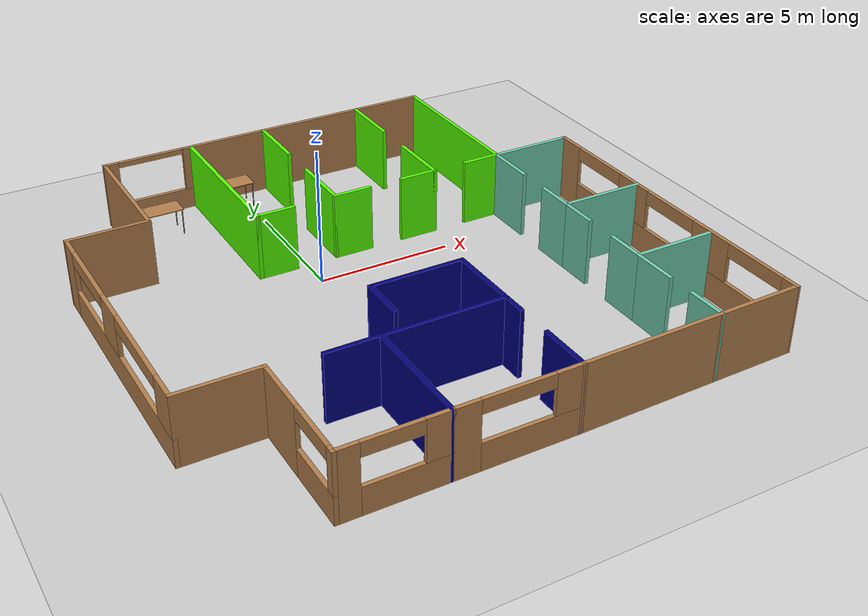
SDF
<sdf version="1.6">
 <world name="default">
  <model name="ground_plane">
   <static>1</static>
   <link name="link">
    <collision name="collision">
     <geometry><plane><normal>0 0 1</normal><size>100 100</size></plane></geometry>
     <surface><friction><ode><mu>100</mu><mu2>50</mu2></ode></friction></surface>
    </collision>
    <visual name="visual">
     <cast_shadows>0</cast_shadows>
     <geometry><plane><normal>0 0 1</normal><size>100 100</size></plane></geometry>
     <material>
      <script><uri>file://media/materials/scripts/gazebo.material</uri><name>Gazebo/Grey</name></script>
     </material>
    </visual>
   </link>
  </model>
  <model name="Office_Building">
   <pose>1.54423 -1.89975 0 0 -0 0</pose>
   <link name="Wall_1">
    <pose>-4.9967 9.51095 0 0 -0 0</pose>
    <visual name="Wall_1_Visual_0">
     <pose>-1.46283 0 1.25 0 -0 0</pose>
     <geometry><box><size>0.574332 0.15 2.5</size></box></geometry>
     <material>
      <script><uri>file://media/materials/scripts/gazebo.material</uri><name>Gazebo/Wood</name></script>
      <ambient>1 1 1 1</ambient>
     </material>
     <meta><layer>0</layer></meta>
    </visual>
    <collision name="Wall_1_Collision_0">
     <geometry><box><size>0.574332 0.15 2.5</size></box></geometry>
     <pose>-1.46283 0 1.25 0 -0 0</pose>
    </collision>
    <visual name="Wall_1_Visual_1">
     <pose>0.287166 0 0.4 0 -0 0</pose>
     <geometry><box><size>2.92567 0.15 0.8</size></box></geometry>
     <material>
      <script><uri>file://media/materials/scripts/gazebo.material</uri><name>Gazebo/Wood</name></script>
      <ambient>1 1 1 1</ambient>
     </material>
     <meta><layer>0</layer></meta>
    </visual>
    <collision name="Wall_1_Collision_1">
     <geometry><box><size>2.92567 0.15 0.8</size></box></geometry>
     <pose>0.287166 0 0.4 0 -0 0</pose>
    </collision>
    <visual name="Wall_1_Visual_2">
     <pose>1.53717 0 1.65 0 -0 0</pose>
     <geometry><box><size>0.425668 0.15 1.7</size></box></geometry>
     <material>
      <script><uri>file://media/materials/scripts/gazebo.material</uri><name>Gazebo/Wood</name></script>
      <ambient>1 1 1 1</ambient>
     </material>
     <meta><layer>0</layer></meta>
    </visual>
    <collision name="Wall_1_Collision_2">
     <geometry><box><size>0.425668 0.15 1.7</size></box></geometry>
     <pose>1.53717 0 1.65 0 -0 0</pose>
    </collision>
    <visual name="Wall_1_Visual_3">
     <pose>0.074332 0 2.4 0 -0 0</pose>
     <geometry><box><size>2.5 0.15 0.2</size></box></geometry>
     <material>
      <script><uri>file://media/materials/scripts/gazebo.material</uri><name>Gazebo/Wood</name></script>
      <ambient>1 1 1 1</ambient>
     </material>
     <meta><layer>0</layer></meta>
    </visual>
    <collision name="Wall_1_Collision_3">
     <geometry><box><size>2.5 0.15 0.2</size></box></geometry>
     <pose>0.074332 0 2.4 0 -0 0</pose>
    </collision>
   </link>
   <link name="Wall_12">
    <collision name="Wall_12_Collision">
     <geometry><box><size>1.5 0.15 2.5</size></box></geometry>
     <pose>0 0 1.25 0 -0 0</pose>
    </collision>
    <visual name="Wall_12_Visual">
     <pose>0 0 1.25 0 -0 0</pose>
     <geometry><box><size>1.5 0.15 2.5</size></box></geometry>
     <material>
      <script><uri>file://media/materials/scripts/gazebo.material</uri><name>Gazebo/Grey</name></script>
      <ambient>0.333333 1 0 1</ambient>
     </material>
     <meta><layer>0</layer></meta>
    </visual>
    <pose>0.345497 3.18997 0 0 -0 0</pose>
   </link>
   <link name="Wall_16">
    <collision name="Wall_16_Collision">
     <geometry><box><size>1.5 0.15 2.5</size></box></geometry>
     <pose>0 0 1.25 0 -0 0</pose>
    </collision>
    <visual name="Wall_16_Visual">
     <pose>0 0 1.25 0 -0 0</pose>
     <geometry><box><size>1.5 0.15 2.5</size></box></geometry>
     <material>
      <script><uri>file://media/materials/scripts/gazebo.material</uri><name>Gazebo/Grey</name></script>
      <ambient>0.333333 1 0 1</ambient>
     </material>
     <meta><layer>0</layer></meta>
    </visual>
    <pose>3.0455 3.18997 0 0 -0 0</pose>
   </link>
   <link name="Wall_18">
    <collision name="Wall_18_Collision">
     <geometry><box><size>1.5 0.15 2.5</size></box></geometry>
     <pose>0 0 1.25 0 -0 0</pose>
    </collision>
    <visual name="Wall_18_Visual">
     <pose>0 0 1.25 0 -0 0</pose>
     <geometry><box><size>1.5 0.15 2.5</size></box></geometry>
     <material>
      <script><uri>file://media/materials/scripts/gazebo.material</uri><name>Gazebo/Grey</name></script>
      <ambient>0.333333 1 0 1</ambient>
     </material>
     <meta><layer>0</layer></meta>
    </visual>
    <pose>5.7455 3.18997 0 0 -0 0</pose>
   </link>
   <link name="Wall_2">
    <collision name="Wall_2_Collision">
     <geometry><box><size>6.5 0.15 2.5</size></box></geometry>
     <pose>0 0 1.25 0 -0 0</pose>
    </collision>
    <visual name="Wall_2_Visual">
     <pose>0 0 1.25 0 -0 0</pose>
     <geometry><box><size>6.5 0.15 2.5</size></box></geometry>
     <material>
      <script><uri>file://media/materials/scripts/gazebo.material</uri><name>Gazebo/Grey</name></script>
      <ambient>0.333333 1 0 1</ambient>
     </material>
     <meta><layer>0</layer></meta>
    </visual>
    <pose>-3.3217 6.33595 0 0 0 -1.5708</pose>
   </link>
   <link name="Wall_22">
    <collision name="Wall_22_Collision">
     <geometry><box><size>6.5 0.15 2.5</size></box></geometry>
     <pose>0 0 1.25 0 -0 0</pose>
    </collision>
    <visual name="Wall_22_Visual">
     <pose>0 0 1.25 0 -0 0</pose>
     <geometry><box><size>6.5 0.15 2.5</size></box></geometry>
     <material>
      <script><uri>file://media/materials/scripts/gazebo.material</uri><name>Gazebo/Grey</name></script>
      <ambient>0.333333 1 0 1</ambient>
     </material>
     <meta><layer>0</layer></meta>
    </visual>
    <pose>6.4205 6.36497 0 0 -0 1.5708</pose>
   </link>
   <link name="Wall_23">
    <collision name="Wall_23_Collision">
     <geometry><box><size>9.89224 0.15 2.5</size></box></geometry>
     <pose>0 0 1.25 0 -0 0</pose>
    </collision>
    <visual name="Wall_23_Visual">
     <pose>0 0 1.25 0 -0 0</pose>
     <geometry><box><size>9.89224 0.15 2.5</size></box></geometry>
     <material>
      <script><uri>file://media/materials/scripts/gazebo.material</uri><name>Gazebo/Wood</name></script>
      <ambient>1 1 1 1</ambient>
     </material>
     <meta><layer>0</layer></meta>
    </visual>
    <pose>1.5494 9.52546 0 0 0 -3.13861</pose>
   </link>
   <link name="Wall_25">
    <collision name="Wall_25_Collision">
     <geometry><box><size>2.5 0.15 2.5</size></box></geometry>
     <pose>0 0 1.25 0 -0 0</pose>
    </collision>
    <visual name="Wall_25_Visual">
     <pose>0 0 1.25 0 -0 0</pose>
     <geometry><box><size>2.5 0.15 2.5</size></box></geometry>
     <material>
      <script><uri>file://media/materials/scripts/gazebo.material</uri><name>Gazebo/Grey</name></script>
      <ambient>0.333333 1 0 1</ambient>
     </material>
     <meta><layer>0</layer></meta>
    </visual>
    <pose>-0.329504 4.36497 0 0 -0 1.5708</pose>
   </link>
   <link name="Wall_3">
    <collision name="Wall_3_Collision">
     <geometry><box><size>1.5 0.15 2.5</size></box></geometry>
     <pose>0 0 1.25 0 -0 0</pose>
    </collision>
    <visual name="Wall_3_Visual">
     <pose>0 0 1.25 0 -0 0</pose>
     <geometry><box><size>1.5 0.15 2.5</size></box></geometry>
     <material>
      <script><uri>file://media/materials/scripts/gazebo.material</uri><name>Gazebo/Grey</name></script>
      <ambient>0.333333 1 0 1</ambient>
     </material>
     <meta><layer>0</layer></meta>
    </visual>
    <pose>-2.6467 3.16095 0 0 -0 0</pose>
   </link>
   <link name="Wall_30">
    <collision name="Wall_30_Collision">
     <geometry><box><size>2.5 0.15 2.5</size></box></geometry>
     <pose>0 0 1.25 0 -0 0</pose>
    </collision>
    <visual name="Wall_30_Visual">
     <pose>0 0 1.25 0 -0 0</pose>
     <geometry><box><size>2.5 0.15 2.5</size></box></geometry>
     <material>
      <script><uri>file://media/materials/scripts/gazebo.material</uri><name>Gazebo/Grey</name></script>
      <ambient>0.333333 1 0 1</ambient>
     </material>
     <meta><layer>0</layer></meta>
    </visual>
    <pose>-0.329504 8.31497 0 0 -0 1.5708</pose>
   </link>
   <link name="Wall_32">
    <collision name="Wall_32_Collision">
     <geometry><box><size>2.5 0.15 2.5</size></box></geometry>
     <pose>0 0 1.25 0 -0 0</pose>
    </collision>
    <visual name="Wall_32_Visual">
     <pose>0 0 1.25 0 -0 0</pose>
     <geometry><box><size>2.5 0.15 2.5</size></box></geometry>
     <material>
      <script><uri>file://media/materials/scripts/gazebo.material</uri><name>Gazebo/Grey</name></script>
      <ambient>0.333333 1 0 1</ambient>
     </material>
     <meta><layer>0</layer></meta>
    </visual>
    <pose>3.7205 4.36497 0 0 -0 1.5708</pose>
   </link>
   <link name="Wall_36">
    <collision name="Wall_36_Collision">
     <geometry><box><size>2.5 0.15 2.5</size></box></geometry>
     <pose>0 0 1.25 0 -0 0</pose>
    </collision>
    <visual name="Wall_36_Visual">
     <pose>0 0 1.25 0 -0 0</pose>
     <geometry><box><size>2.5 0.15 2.5</size></box></geometry>
     <material>
      <script><uri>file://media/materials/scripts/gazebo.material</uri><name>Gazebo/Grey</name></script>
      <ambient>0.333333 1 0 1</ambient>
     </material>
     <meta><layer>0</layer></meta>
    </visual>
    <pose>3.7205 8.31497 0 0 -0 1.5708</pose>
   </link>
   <link name="Wall_45">
    <pose>-9.5217 -0.264053 0 0 0 -1.5708</pose>
    <visual name="Wall_45_Visual_0">
     <pose>-4.52501 0 1.25 0 -0 0</pose>
     <geometry><box><size>0.949979 0.15 2.5</size></box></geometry>
     <material>
      <script><uri>file://media/materials/scripts/gazebo.material</uri><name>Gazebo/Wood</name></script>
      <ambient>1 1 1 1</ambient>
     </material>
     <meta><layer>0</layer></meta>
    </visual>
    <collision name="Wall_45_Collision_0">
     <geometry><box><size>0.949979 0.15 2.5</size></box></geometry>
     <pose>-4.52501 0 1.25 0 -0 0</pose>
    </collision>
    <visual name="Wall_45_Visual_1">
     <pose>0.47499 0 0.5 0 -0 0</pose>
     <geometry><box><size>9.05002 0.15 1</size></box></geometry>
     <material>
      <script><uri>file://media/materials/scripts/gazebo.material</uri><name>Gazebo/Wood</name></script>
      <ambient>1 1 1 1</ambient>
     </material>
     <meta><layer>0</layer></meta>
    </visual>
    <collision name="Wall_45_Collision_1">
     <geometry><box><size>9.05002 0.15 1</size></box></geometry>
     <pose>0.47499 0 0.5 0 -0 0</pose>
    </collision>
    <visual name="Wall_45_Visual_2">
     <pose>-0.367725 0 1.75 0 -0 0</pose>
     <geometry><box><size>1.36459 0.15 1.5</size></box></geometry>
     <material>
      <script><uri>file://media/materials/scripts/gazebo.material</uri><name>Gazebo/Wood</name></script>
      <ambient>1 1 1 1</ambient>
     </material>
     <meta><layer>0</layer></meta>
    </visual>
    <collision name="Wall_45_Collision_2">
     <geometry><box><size>1.36459 0.15 1.5</size></box></geometry>
     <pose>-0.367725 0 1.75 0 -0 0</pose>
    </collision>
    <visual name="Wall_45_Visual_3">
     <pose>4.40728 0 1.75 0 -0 0</pose>
     <geometry><box><size>1.18543 0.15 1.5</size></box></geometry>
     <material>
      <script><uri>file://media/materials/scripts/gazebo.material</uri><name>Gazebo/Wood</name></script>
      <ambient>1 1 1 1</ambient>
     </material>
     <meta><layer>0</layer></meta>
    </visual>
    <collision name="Wall_45_Collision_3">
     <geometry><box><size>1.18543 0.15 1.5</size></box></geometry>
     <pose>4.40728 0 1.75 0 -0 0</pose>
    </collision>
    <visual name="Wall_45_Visual_4">
     <pose>-2.55002 0 2.25 0 -0 0</pose>
     <geometry><box><size>3 0.15 0.5</size></box></geometry>
     <material>
      <script><uri>file://media/materials/scripts/gazebo.material</uri><name>Gazebo/Wood</name></script>
      <ambient>1 1 1 1</ambient>
     </material>
     <meta><layer>0</layer></meta>
    </visual>
    <collision name="Wall_45_Collision_4">
     <geometry><box><size>3 0.15 0.5</size></box></geometry>
     <pose>-2.55002 0 2.25 0 -0 0</pose>
    </collision>
    <visual name="Wall_45_Visual_5">
     <pose>2.06457 0 2.25 0 -0 0</pose>
     <geometry><box><size>3.5 0.15 0.5</size></box></geometry>
     <material>
      <script><uri>file://media/materials/scripts/gazebo.material</uri><name>Gazebo/Wood</name></script>
      <ambient>1 1 1 1</ambient>
     </material>
     <meta><layer>0</layer></meta>
    </visual>
    <collision name="Wall_45_Collision_5">
     <geometry><box><size>3.5 0.15 0.5</size></box></geometry>
     <pose>2.06457 0 2.25 0 -0 0</pose>
    </collision>
   </link>
   <link name="Wall_46">
    <collision name="Wall_46_Collision">
     <geometry><box><size>3 0.15 2.5</size></box></geometry>
     <pose>0 0 1.25 0 -0 0</pose>
    </collision>
    <visual name="Wall_46_Visual">
     <pose>0 0 1.25 0 -0 0</pose>
     <geometry><box><size>3 0.15 2.5</size></box></geometry>
     <material>
      <script><uri>file://media/materials/scripts/gazebo.material</uri><name>Gazebo/Wood</name></script>
      <ambient>1 1 1 1</ambient>
     </material>
     <meta><layer>0</layer></meta>
    </visual>
    <pose>-8.0967 -5.18905 0 0 -0 0</pose>
   </link>
   <link name="Wall_48">
    <pose>-6.6717 -7.36405 0 0 0 -1.5708</pose>
    <visual name="Wall_48_Visual_0">
     <pose>-1.15861 0 1.25 0 -0 0</pose>
     <geometry><box><size>2.18277 0.15 2.5</size></box></geometry>
     <material>
      <script><uri>file://media/materials/scripts/gazebo.material</uri><name>Gazebo/Wood</name></script>
      <ambient>0 0 0.498039 1</ambient>
     </material>
     <meta><layer>0</layer></meta>
    </visual>
    <collision name="Wall_48_Collision_0">
     <geometry><box><size>2.18277 0.15 2.5</size></box></geometry>
     <pose>-1.15861 0 1.25 0 -0 0</pose>
    </collision>
    <visual name="Wall_48_Visual_1">
     <pose>1.09139 0 0.5 0 -0 0</pose>
     <geometry><box><size>2.31723 0.15 1</size></box></geometry>
     <material>
      <script><uri>file://media/materials/scripts/gazebo.material</uri><name>Gazebo/Wood</name></script>
      <ambient>0 0 0.498039 1</ambient>
     </material>
     <meta><layer>0</layer></meta>
    </visual>
    <collision name="Wall_48_Collision_1">
     <geometry><box><size>2.31723 0.15 1</size></box></geometry>
     <pose>1.09139 0 0.5 0 -0 0</pose>
    </collision>
    <visual name="Wall_48_Visual_2">
     <pose>2.09139 0 1.75 0 -0 0</pose>
     <geometry><box><size>0.317226 0.15 1.5</size></box></geometry>
     <material>
      <script><uri>file://media/materials/scripts/gazebo.material</uri><name>Gazebo/Wood</name></script>
      <ambient>0 0 0.498039 1</ambient>
     </material>
     <meta><layer>0</layer></meta>
    </visual>
    <collision name="Wall_48_Collision_2">
     <geometry><box><size>0.317226 0.15 1.5</size></box></geometry>
     <pose>2.09139 0 1.75 0 -0 0</pose>
    </collision>
    <visual name="Wall_48_Visual_3">
     <pose>0.932774 0 2.25 0 -0 0</pose>
     <geometry><box><size>2 0.15 0.5</size></box></geometry>
     <material>
      <script><uri>file://media/materials/scripts/gazebo.material</uri><name>Gazebo/Wood</name></script>
      <ambient>0 0 0.498039 1</ambient>
     </material>
     <meta><layer>0</layer></meta>
    </visual>
    <collision name="Wall_48_Collision_3">
     <geometry><box><size>2 0.15 0.5</size></box></geometry>
     <pose>0.932774 0 2.25 0 -0 0</pose>
    </collision>
   </link>
   <link name="Wall_49">
    <pose>-4.8717 -9.53905 0 0 -0 0</pose>
    <visual name="Wall_49_Visual_0">
     <pose>-1.4581 0 1.25 0 -0 0</pose>
     <geometry><box><size>0.833803 0.15 2.5</size></box></geometry>
     <material>
      <script><uri>file://media/materials/scripts/gazebo.material</uri><name>Gazebo/Wood</name></script>
      <ambient>0 0 0.498039 1</ambient>
     </material>
     <meta><layer>0</layer></meta>
    </visual>
    <collision name="Wall_49_Collision_0">
     <geometry><box><size>0.833803 0.15 2.5</size></box></geometry>
     <pose>-1.4581 0 1.25 0 -0 0</pose>
    </collision>
    <visual name="Wall_49_Visual_1">
     <pose>0.416901 0 0.5 0 -0 0</pose>
     <geometry><box><size>2.9162 0.15 1</size></box></geometry>
     <material>
      <script><uri>file://media/materials/scripts/gazebo.material</uri><name>Gazebo/Wood</name></script>
      <ambient>0 0 0.498039 1</ambient>
     </material>
     <meta><layer>0</layer></meta>
    </visual>
    <collision name="Wall_49_Collision_1">
     <geometry><box><size>2.9162 0.15 1</size></box></geometry>
     <pose>0.416901 0 0.5 0 -0 0</pose>
    </collision>
    <visual name="Wall_49_Visual_2">
     <pose>1.4169 0 1.75 0 -0 0</pose>
     <geometry><box><size>0.916197 0.15 1.5</size></box></geometry>
     <material>
      <script><uri>file://media/materials/scripts/gazebo.material</uri><name>Gazebo/Wood</name></script>
      <ambient>0 0 0.498039 1</ambient>
     </material>
     <meta><layer>0</layer></meta>
    </visual>
    <collision name="Wall_49_Collision_2">
     <geometry><box><size>0.916197 0.15 1.5</size></box></geometry>
     <pose>1.4169 0 1.75 0 -0 0</pose>
    </collision>
    <visual name="Wall_49_Visual_3">
     <pose>-0.041197 0 2.25 0 -0 0</pose>
     <geometry><box><size>2 0.15 0.5</size></box></geometry>
     <material>
      <script><uri>file://media/materials/scripts/gazebo.material</uri><name>Gazebo/Wood</name></script>
      <ambient>0 0 0.498039 1</ambient>
     </material>
     <meta><layer>0</layer></meta>
    </visual>
    <collision name="Wall_49_Collision_3">
     <geometry><box><size>2 0.15 0.5</size></box></geometry>
     <pose>-0.041197 0 2.25 0 -0 0</pose>
    </collision>
   </link>
   <link name="Wall_50">
    <collision name="Wall_50_Collision">
     <geometry><box><size>4.25 0.15 2.5</size></box></geometry>
     <pose>0 0 1.25 0 -0 0</pose>
    </collision>
    <visual name="Wall_50_Visual">
     <pose>0 0 1.25 0 -0 0</pose>
     <geometry><box><size>4.25 0.15 2.5</size></box></geometry>
     <material>
      <script><uri>file://media/materials/scripts/gazebo.material</uri><name>Gazebo/Grey</name></script>
      <ambient>0 0 0.498039 1</ambient>
     </material>
     <meta><layer>0</layer></meta>
    </visual>
    <pose>-3.0717 -7.48905 0 0 -0 1.5708</pose>
   </link>
   <link name="Wall_51">
    <collision name="Wall_51_Collision">
     <geometry><box><size>4.5 0.15 2.5</size></box></geometry>
     <pose>0 0 1.25 0 -0 0</pose>
    </collision>
    <visual name="Wall_51_Visual">
     <pose>0 0 1.25 0 -0 0</pose>
     <geometry><box><size>4.5 0.15 2.5</size></box></geometry>
     <material>
      <script><uri>file://media/materials/scripts/gazebo.material</uri><name>Gazebo/Grey</name></script>
      <ambient>0 0 0.498039 1</ambient>
     </material>
     <meta><layer>0</layer></meta>
    </visual>
    <pose>-0.896696 -5.43905 0 0 -0 0</pose>
   </link>
   <link name="Wall_52">
    <collision name="Wall_52_Collision">
     <geometry><box><size>2.75 0.15 2.5</size></box></geometry>
     <pose>0 0 1.25 0 -0 0</pose>
    </collision>
    <visual name="Wall_52_Visual">
     <pose>0 0 1.25 0 -0 0</pose>
     <geometry><box><size>2.75 0.15 2.5</size></box></geometry>
     <material>
      <script><uri>file://media/materials/scripts/gazebo.material</uri><name>Gazebo/Grey</name></script>
      <ambient>0 0 0.498039 1</ambient>
     </material>
     <meta><layer>0</layer></meta>
    </visual>
    <pose>1.2783 -4.13905 0 0 -0 1.5708</pose>
   </link>
   <link name="Wall_53">
    <collision name="Wall_53_Collision">
     <geometry><box><size>3.5 0.15 2.5</size></box></geometry>
     <pose>0 0 1.25 0 -0 0</pose>
    </collision>
    <visual name="Wall_53_Visual">
     <pose>0 0 1.25 0 -0 0</pose>
     <geometry><box><size>3.5 0.15 2.5</size></box></geometry>
     <material>
      <script><uri>file://media/materials/scripts/gazebo.material</uri><name>Gazebo/Grey</name></script>
      <ambient>0 0 0.498039 1</ambient>
     </material>
     <meta><layer>0</layer></meta>
    </visual>
    <pose>-0.396696 -2.83905 0 0 -0 3.14159</pose>
   </link>
   <link name="Wall_54">
    <collision name="Wall_54_Collision">
     <geometry><box><size>1.75 0.15 2.5</size></box></geometry>
     <pose>0 0 1.25 0 -0 0</pose>
    </collision>
    <visual name="Wall_54_Visual">
     <pose>0 0 1.25 0 -0 0</pose>
     <geometry><box><size>1.75 0.15 2.5</size></box></geometry>
     <material>
      <script><uri>file://media/materials/scripts/gazebo.material</uri><name>Gazebo/Grey</name></script>
      <ambient>0 0 0.498039 1</ambient>
     </material>
     <meta><layer>0</layer></meta>
    </visual>
    <pose>-2.0717 -3.63905 0 0 0 -1.5708</pose>
   </link>
   <link name="Wall_56">
    <collision name="Wall_56_Collision">
     <geometry><box><size>2 0.15 2.5</size></box></geometry>
     <pose>0 0 1.25 0 -0 0</pose>
    </collision>
    <visual name="Wall_56_Visual">
     <pose>0 0 1.25 0 -0 0</pose>
     <geometry><box><size>2 0.15 2.5</size></box></geometry>
     <material>
      <script><uri>file://media/materials/scripts/gazebo.material</uri><name>Gazebo/Grey</name></script>
      <ambient>0 0 0.498039 1</ambient>
     </material>
     <meta><layer>0</layer></meta>
    </visual>
    <pose>-3.9967 -5.43905 0 0 -0 3.14159</pose>
   </link>
   <link name="Wall_59">
    <pose>-0.896696 -9.53905 0 0 -0 0</pose>
    <visual name="Wall_59_Visual_0">
     <pose>-1.75844 0 1.25 0 -0 0</pose>
     <geometry><box><size>0.983115 0.15 2.5</size></box></geometry>
     <material>
      <script><uri>file://media/materials/scripts/gazebo.material</uri><name>Gazebo/Wood</name></script>
      <ambient>0 0 0.498039 1</ambient>
     </material>
     <meta><layer>0</layer></meta>
    </visual>
    <collision name="Wall_59_Collision_0">
     <geometry><box><size>0.983115 0.15 2.5</size></box></geometry>
     <pose>-1.75844 0 1.25 0 -0 0</pose>
    </collision>
    <visual name="Wall_59_Visual_1">
     <pose>0.491557 0 0.5 0 -0 0</pose>
     <geometry><box><size>3.51688 0.15 1</size></box></geometry>
     <material>
      <script><uri>file://media/materials/scripts/gazebo.material</uri><name>Gazebo/Wood</name></script>
      <ambient>0 0 0.498039 1</ambient>
     </material>
     <meta><layer>0</layer></meta>
    </visual>
    <collision name="Wall_59_Collision_1">
     <geometry><box><size>3.51688 0.15 1</size></box></geometry>
     <pose>0.491557 0 0.5 0 -0 0</pose>
    </collision>
    <visual name="Wall_59_Visual_2">
     <pose>1.74156 0 1.75 0 -0 0</pose>
     <geometry><box><size>1.01689 0.15 1.5</size></box></geometry>
     <material>
      <script><uri>file://media/materials/scripts/gazebo.material</uri><name>Gazebo/Wood</name></script>
      <ambient>0 0 0.498039 1</ambient>
     </material>
     <meta><layer>0</layer></meta>
    </visual>
    <collision name="Wall_59_Collision_2">
     <geometry><box><size>1.01689 0.15 1.5</size></box></geometry>
     <pose>1.74156 0 1.75 0 -0 0</pose>
    </collision>
    <visual name="Wall_59_Visual_3">
     <pose>-0.016885 0 2.25 0 -0 0</pose>
     <geometry><box><size>2.5 0.15 0.5</size></box></geometry>
     <material>
      <script><uri>file://media/materials/scripts/gazebo.material</uri><name>Gazebo/Wood</name></script>
      <ambient>0 0 0.498039 1</ambient>
     </material>
     <meta><layer>0</layer></meta>
    </visual>
    <collision name="Wall_59_Collision_3">
     <geometry><box><size>2.5 0.15 0.5</size></box></geometry>
     <pose>-0.016885 0 2.25 0 -0 0</pose>
    </collision>
   </link>
   <link name="Wall_60">
    <collision name="Wall_60_Collision">
     <geometry><box><size>2 0.15 2.5</size></box></geometry>
     <pose>0 0 1.25 0 -0 0</pose>
    </collision>
    <visual name="Wall_60_Visual">
     <pose>0 0 1.25 0 -0 0</pose>
     <geometry><box><size>2 0.15 2.5</size></box></geometry>
     <material>
      <script><uri>file://media/materials/scripts/gazebo.material</uri><name>Gazebo/Grey</name></script>
      <ambient>0 0 0.498039 1</ambient>
     </material>
     <meta><layer>0</layer></meta>
    </visual>
    <pose>1.2783 -8.61405 0 0 -0 1.5708</pose>
   </link>
   <link name="Wall_63">
    <collision name="Wall_63_Collision">
     <geometry><box><size>1 0.15 2.5</size></box></geometry>
     <pose>0 0 1.25 0 -0 0</pose>
    </collision>
    <visual name="Wall_63_Visual">
     <pose>0 0 1.25 0 -0 0</pose>
     <geometry><box><size>1 0.15 2.5</size></box></geometry>
     <material>
      <script><uri>file://media/materials/scripts/gazebo.material</uri><name>Gazebo/Grey</name></script>
      <ambient>0 0 0.498039 1</ambient>
     </material>
     <meta><layer>0</layer></meta>
    </visual>
    <pose>1.2783 -5.86405 0 0 0 -1.5708</pose>
   </link>
   <link name="Wall_65">
    <collision name="Wall_65_Collision">
     <geometry><box><size>3.25 0.15 2.5</size></box></geometry>
     <pose>0 0 1.25 0 -0 0</pose>
    </collision>
    <visual name="Wall_65_Visual">
     <pose>0 0 1.25 0 -0 0</pose>
     <geometry><box><size>3.25 0.15 2.5</size></box></geometry>
     <material>
      <script><uri>file://media/materials/scripts/gazebo.material</uri><name>Gazebo/Grey</name></script>
      <ambient>0.435294 0.796078 0.67451 1</ambient>
     </material>
     <meta><layer>0</layer></meta>
    </visual>
    <pose>7.9705 3.18997 0 0 -0 0</pose>
   </link>
   <link name="Wall_66">
    <pose>9.5205 -3.11003 0 0 0 -1.5708</pose>
    <visual name="Wall_66_Visual_0">
     <pose>-5.79185 0 1.25 0 -0 0</pose>
     <geometry><box><size>1.1663 0.15 2.5</size></box></geometry>
     <material>
      <script><uri>file://media/materials/scripts/gazebo.material</uri><name>Gazebo/Wood</name></script>
      <ambient>0.435294 0.796078 0.67451 1</ambient>
     </material>
     <meta><layer>0</layer></meta>
    </visual>
    <collision name="Wall_66_Collision_0">
     <geometry><box><size>1.1663 0.15 2.5</size></box></geometry>
     <pose>-5.79185 0 1.25 0 -0 0</pose>
    </collision>
    <visual name="Wall_66_Visual_1">
     <pose>0.583151 0 0.5 0 -0 0</pose>
     <geometry><box><size>11.5837 0.15 1</size></box></geometry>
     <material>
      <script><uri>file://media/materials/scripts/gazebo.material</uri><name>Gazebo/Wood</name></script>
      <ambient>0.435294 0.796078 0.67451 1</ambient>
     </material>
     <meta><layer>0</layer></meta>
    </visual>
    <collision name="Wall_66_Collision_1">
     <geometry><box><size>11.5837 0.15 1</size></box></geometry>
     <pose>0.583151 0 0.5 0 -0 0</pose>
    </collision>
    <visual name="Wall_66_Visual_2">
     <pose>-1.90874 0 1.75 0 -0 0</pose>
     <geometry><box><size>1.59992 0.15 1.5</size></box></geometry>
     <material>
      <script><uri>file://media/materials/scripts/gazebo.material</uri><name>Gazebo/Wood</name></script>
      <ambient>0.435294 0.796078 0.67451 1</ambient>
     </material>
     <meta><layer>0</layer></meta>
    </visual>
    <collision name="Wall_66_Collision_2">
     <geometry><box><size>1.59992 0.15 1.5</size></box></geometry>
     <pose>-1.90874 0 1.75 0 -0 0</pose>
    </collision>
    <visual name="Wall_66_Visual_3">
     <pose>2.29484 0 1.75 0 -0 0</pose>
     <geometry><box><size>1.80724 0.15 1.5</size></box></geometry>
     <material>
      <script><uri>file://media/materials/scripts/gazebo.material</uri><name>Gazebo/Wood</name></script>
      <ambient>0.435294 0.796078 0.67451 1</ambient>
     </material>
     <meta><layer>0</layer></meta>
    </visual>
    <collision name="Wall_66_Collision_3">
     <geometry><box><size>1.80724 0.15 1.5</size></box></geometry>
     <pose>2.29484 0 1.75 0 -0 0</pose>
    </collision>
    <visual name="Wall_66_Visual_4">
     <pose>6.03673 0 1.75 0 -0 0</pose>
     <geometry><box><size>0.676535 0.15 1.5</size></box></geometry>
     <material>
      <script><uri>file://media/materials/scripts/gazebo.material</uri><name>Gazebo/Wood</name></script>
      <ambient>0.435294 0.796078 0.67451 1</ambient>
     </material>
     <meta><layer>0</layer></meta>
    </visual>
    <collision name="Wall_66_Collision_4">
     <geometry><box><size>0.676535 0.15 1.5</size></box></geometry>
     <pose>6.03673 0 1.75 0 -0 0</pose>
    </collision>
    <visual name="Wall_66_Visual_5">
     <pose>-3.9587 0 2.25 0 -0 0</pose>
     <geometry><box><size>2.5 0.15 0.5</size></box></geometry>
     <material>
      <script><uri>file://media/materials/scripts/gazebo.material</uri><name>Gazebo/Wood</name></script>
      <ambient>0.435294 0.796078 0.67451 1</ambient>
     </material>
     <meta><layer>0</layer></meta>
    </visual>
    <collision name="Wall_66_Collision_5">
     <geometry><box><size>2.5 0.15 0.5</size></box></geometry>
     <pose>-3.9587 0 2.25 0 -0 0</pose>
    </collision>
    <visual name="Wall_66_Visual_6">
     <pose>0.141222 0 2.25 0 -0 0</pose>
     <geometry><box><size>2.5 0.15 0.5</size></box></geometry>
     <material>
      <script><uri>file://media/materials/scripts/gazebo.material</uri><name>Gazebo/Wood</name></script>
      <ambient>0.435294 0.796078 0.67451 1</ambient>
     </material>
     <meta><layer>0</layer></meta>
    </visual>
    <collision name="Wall_66_Collision_6">
     <geometry><box><size>2.5 0.15 0.5</size></box></geometry>
     <pose>0.141222 0 2.25 0 -0 0</pose>
    </collision>
    <visual name="Wall_66_Visual_7">
     <pose>4.44846 0 2.25 0 -0 0</pose>
     <geometry><box><size>2.5 0.15 0.5</size></box></geometry>
     <material>
      <script><uri>file://media/materials/scripts/gazebo.material</uri><name>Gazebo/Wood</name></script>
      <ambient>0.435294 0.796078 0.67451 1</ambient>
     </material>
     <meta><layer>0</layer></meta>
    </visual>
    <collision name="Wall_66_Collision_7">
     <geometry><box><size>2.5 0.15 0.5</size></box></geometry>
     <pose>4.44846 0 2.25 0 -0 0</pose>
    </collision>
   </link>
   <link name="Wall_69">
    <collision name="Wall_69_Collision">
     <geometry><box><size>2 0.15 2.5</size></box></geometry>
     <pose>0 0 1.25 0 -0 0</pose>
    </collision>
    <visual name="Wall_69_Visual">
     <pose>0 0 1.25 0 -0 0</pose>
     <geometry><box><size>2 0.15 2.5</size></box></geometry>
     <material>
      <script><uri>file://media/materials/scripts/gazebo.material</uri><name>Gazebo/Grey</name></script>
      <ambient>0.435294 0.796078 0.67451 1</ambient>
     </material>
     <meta><layer>0</layer></meta>
    </visual>
    <pose>6.4205 2.26497 0 0 0 -1.5708</pose>
   </link>
   <link name="Wall_7">
    <collision name="Wall_7_Collision">
     <geometry><box><size>5 0.15 2.5</size></box></geometry>
     <pose>0 0 1.25 0 -0 0</pose>
    </collision>
    <visual name="Wall_7_Visual">
     <pose>0 0 1.25 0 -0 0</pose>
     <geometry><box><size>5 0.15 2.5</size></box></geometry>
     <material>
      <script><uri>file://media/materials/scripts/gazebo.material</uri><name>Gazebo/Wood</name></script>
      <ambient>1 1 1 1</ambient>
     </material>
     <meta><layer>0</layer></meta>
    </visual>
    <pose>-6.6717 7.08595 0 0 0 -1.5708</pose>
   </link>
   <link name="Wall_75">
    <collision name="Wall_75_Collision">
     <geometry><box><size>1.5 0.15 2.5</size></box></geometry>
     <pose>0 0 1.25 0 -0 0</pose>
    </collision>
    <visual name="Wall_75_Visual">
     <pose>0 0 1.25 0 -0 0</pose>
     <geometry><box><size>1.5 0.15 2.5</size></box></geometry>
     <material>
      <script><uri>file://media/materials/scripts/gazebo.material</uri><name>Gazebo/Grey</name></script>
      <ambient>0.435294 0.796078 0.67451 1</ambient>
     </material>
     <meta><layer>0</layer></meta>
    </visual>
    <pose>6.4205 -0.685027 0 0 0 -1.5708</pose>
   </link>
   <link name="Wall_76">
    <collision name="Wall_76_Collision">
     <geometry><box><size>3.25 0.15 2.5</size></box></geometry>
     <pose>0 0 1.25 0 -0 0</pose>
    </collision>
    <visual name="Wall_76_Visual">
     <pose>0 0 1.25 0 -0 0</pose>
     <geometry><box><size>3.25 0.15 2.5</size></box></geometry>
     <material>
      <script><uri>file://media/materials/scripts/gazebo.material</uri><name>Gazebo/Grey</name></script>
      <ambient>0.435294 0.796078 0.67451 1</ambient>
     </material>
     <meta><layer>0</layer></meta>
    </visual>
    <pose>7.9705 -1.36003 0 0 -0 0</pose>
   </link>
   <link name="Wall_78">
    <collision name="Wall_78_Collision">
     <geometry><box><size>1.5 0.15 2.5</size></box></geometry>
     <pose>0 0 1.25 0 -0 0</pose>
    </collision>
    <visual name="Wall_78_Visual">
     <pose>0 0 1.25 0 -0 0</pose>
     <geometry><box><size>1.5 0.15 2.5</size></box></geometry>
     <material>
      <script><uri>file://media/materials/scripts/gazebo.material</uri><name>Gazebo/Grey</name></script>
      <ambient>0.435294 0.796078 0.67451 1</ambient>
     </material>
     <meta><layer>0</layer></meta>
    </visual>
    <pose>6.4205 -2.03503 0 0 0 -1.5708</pose>
   </link>
   <link name="Wall_8">
    <collision name="Wall_8_Collision">
     <geometry><box><size>3 0.15 2.5</size></box></geometry>
     <pose>0 0 1.25 0 -0 0</pose>
    </collision>
    <visual name="Wall_8_Visual">
     <pose>0 0 1.25 0 -0 0</pose>
     <geometry><box><size>3 0.15 2.5</size></box></geometry>
     <material>
      <script><uri>file://media/materials/scripts/gazebo.material</uri><name>Gazebo/Wood</name></script>
      <ambient>1 1 1 1</ambient>
     </material>
     <meta><layer>0</layer></meta>
    </visual>
    <pose>-8.0967 4.66095 0 0 -0 3.14159</pose>
   </link>
   <link name="Wall_80">
    <collision name="Wall_80_Collision">
     <geometry><box><size>1.5 0.15 2.5</size></box></geometry>
     <pose>0 0 1.25 0 -0 0</pose>
    </collision>
    <visual name="Wall_80_Visual">
     <pose>0 0 1.25 0 -0 0</pose>
     <geometry><box><size>1.5 0.15 2.5</size></box></geometry>
     <material>
      <script><uri>file://media/materials/scripts/gazebo.material</uri><name>Gazebo/Grey</name></script>
      <ambient>0.435294 0.796078 0.67451 1</ambient>
     </material>
     <meta><layer>0</layer></meta>
    </visual>
    <pose>6.4205 -4.73503 0 0 0 -1.5708</pose>
   </link>
   <link name="Wall_81">
    <collision name="Wall_81_Collision">
     <geometry><box><size>3.25 0.15 2.5</size></box></geometry>
     <pose>0 0 1.25 0 -0 0</pose>
    </collision>
    <visual name="Wall_81_Visual">
     <pose>0 0 1.25 0 -0 0</pose>
     <geometry><box><size>3.25 0.15 2.5</size></box></geometry>
     <material>
      <script><uri>file://media/materials/scripts/gazebo.material</uri><name>Gazebo/Grey</name></script>
      <ambient>0.435294 0.796078 0.67451 1</ambient>
     </material>
     <meta><layer>0</layer></meta>
    </visual>
    <pose>7.9705 -5.41003 0 0 -0 0</pose>
   </link>
   <link name="Wall_84">
    <collision name="Wall_84_Collision">
     <geometry><box><size>1.75 0.15 2.5</size></box></geometry>
     <pose>0 0 1.25 0 -0 0</pose>
    </collision>
    <visual name="Wall_84_Visual">
     <pose>0 0 1.25 0 -0 0</pose>
     <geometry><box><size>1.75 0.15 2.5</size></box></geometry>
     <material>
      <script><uri>file://media/materials/scripts/gazebo.material</uri><name>Gazebo/Grey</name></script>
      <ambient>0.435294 0.796078 0.67451 1</ambient>
     </material>
     <meta><layer>0</layer></meta>
    </visual>
    <pose>6.4205 -6.21003 0 0 0 -1.5708</pose>
   </link>
   <link name="Wall_88">
    <collision name="Wall_88_Collision">
     <geometry><box><size>1.5 0.15 2.5</size></box></geometry>
     <pose>0 0 1.25 0 -0 0</pose>
    </collision>
    <visual name="Wall_88_Visual">
     <pose>0 0 1.25 0 -0 0</pose>
     <geometry><box><size>1.5 0.15 2.5</size></box></geometry>
     <material>
      <script><uri>file://media/materials/scripts/gazebo.material</uri><name>Gazebo/Grey</name></script>
      <ambient>0.435294 0.796078 0.67451 1</ambient>
     </material>
     <meta><layer>0</layer></meta>
    </visual>
    <pose>6.4205 -8.78503 0 0 0 -1.5708</pose>
   </link>
   <link name="Wall_90">
    <collision name="Wall_90_Collision">
     <geometry><box><size>5.2928 0.15 2.5</size></box></geometry>
     <pose>0 0 1.25 0 -0 0</pose>
    </collision>
    <visual name="Wall_90_Visual">
     <pose>0 0 1.25 0 -0 0</pose>
     <geometry><box><size>5.2928 0.15 2.5</size></box></geometry>
     <material>
      <script><uri>file://media/materials/scripts/gazebo.material</uri><name>Gazebo/Wood</name></script>
      <ambient>1 1 1 1</ambient>
     </material>
     <meta><layer>0</layer></meta>
    </visual>
    <pose>3.8494 -9.49954 0 0 -0 0.015367</pose>
   </link>
   <link name="Wall_91">
    <collision name="Wall_91_Collision">
     <geometry><box><size>3.2504 0.15 2.5</size></box></geometry>
     <pose>0 0 1.25 0 -0 0</pose>
    </collision>
    <visual name="Wall_91_Visual">
     <pose>0 0 1.25 0 -0 0</pose>
     <geometry><box><size>3.2504 0.15 2.5</size></box></geometry>
     <material>
      <script><uri>file://media/materials/scripts/gazebo.material</uri><name>Gazebo/Wood</name></script>
      <ambient>0.435294 0.796078 0.67451 1</ambient>
     </material>
     <meta><layer>0</layer></meta>
    </visual>
    <pose>7.9705 -9.43503 0 0 -0 0.016128</pose>
   </link>
   <static>1</static>
  </model>
  <model name="table">
   <static>1</static>
   <link name="link">
    <collision name="surface">
     <pose>0 0 1 0 -0 0</pose>
     <geometry><box><size>1.5 0.8 0.03</size></box></geometry>
     <surface><friction><ode><mu>0.6</mu><mu2>0.6</mu2></ode></friction></surface>
    </collision>
    <visual name="visual1">
     <pose>0 0 1 0 -0 0</pose>
     <geometry><box><size>1.5 0.8 0.03</size></box></geometry>
     <material>
      <script><uri>file://media/materials/scripts/gazebo.material</uri><name>Gazebo/Wood</name></script>
     </material>
    </visual>
    <collision name="front_left_leg">
     <pose>0.68 0.38 0.5 0 -0 0</pose>
     <geometry><cylinder><radius>0.02</radius><length>1</length></cylinder></geometry>
    </collision>
    <visual name="front_left_leg">
     <pose>0.68 0.38 0.5 0 -0 0</pose>
     <geometry><cylinder><radius>0.02</radius><length>1</length></cylinder></geometry>
     <material>
      <script><uri>file://media/materials/scripts/gazebo.material</uri><name>Gazebo/Grey</name></script>
     </material>
    </visual>
    <collision name="front_right_leg">
     <pose>0.68 -0.38 0.5 0 -0 0</pose>
     <geometry><cylinder><radius>0.02</radius><length>1</length></cylinder></geometry>
    </collision>
    <visual name="front_right_leg">
     <pose>0.68 -0.38 0.5 0 -0 0</pose>
     <geometry><cylinder><radius>0.02</radius><length>1</length></cylinder></geometry>
     <material>
      <script><uri>file://media/materials/scripts/gazebo.material</uri><name>Gazebo/Grey</name></script>
     </material>
    </visual>
    <collision name="back_right_leg">
     <pose>-0.68 -0.38 0.5 0 -0 0</pose>
     <geometry><cylinder><radius>0.02</radius><length>1</length></cylinder></geometry>
    </collision>
    <visual name="back_right_leg">
     <pose>-0.68 -0.38 0.5 0 -0 0</pose>
     <geometry><cylinder><radius>0.02</radius><length>1</length></cylinder></geometry>
     <material>
      <script><uri>file://media/materials/scripts/gazebo.material</uri><name>Gazebo/Grey</name></script>
     </material>
    </visual>
    <collision name="back_left_leg">
     <pose>-0.68 0.38 0.5 0 -0 0</pose>
     <geometry><cylinder><radius>0.02</radius><length>1</length></cylinder></geometry>
    </collision>
    <visual name="back_left_leg">
     <pose>-0.68 0.38 0.5 0 -0 0</pose>
     <geometry><cylinder><radius>0.02</radius><length>1</length></cylinder></geometry>
     <material>
      <script><uri>file://media/materials/scripts/gazebo.material</uri><name>Gazebo/Grey</name></script>
     </material>
    </visual>
   </link>
   <pose>-0.561263 6.7633 0 0 -0 0</pose>
  </model>
  <model name="table_clone_11">
   <static>1</static>
   <link name="link">
    <collision name="surface">
     <pose>0 0 1 0 -0 0</pose>
     <geometry><box><size>1.5 0.8 0.03</size></box></geometry>
     <surface><friction><ode><mu>0.6</mu><mu2>0.6</mu2></ode></friction></surface>
    </collision>
    <visual name="visual1">
     <pose>0 0 1 0 -0 0</pose>
     <geometry><box><size>1.5 0.8 0.03</size></box></geometry>
     <material>
      <script><uri>file://media/materials/scripts/gazebo.material</uri><name>Gazebo/Wood</name></script>
     </material>
    </visual>
    <collision name="front_left_leg">
     <pose>0.68 0.38 0.5 0 -0 0</pose>
     <geometry><cylinder><radius>0.02</radius><length>1</length></cylinder></geometry>
    </collision>
    <visual name="front_left_leg">
     <pose>0.68 0.38 0.5 0 -0 0</pose>
     <geometry><cylinder><radius>0.02</radius><length>1</length></cylinder></geometry>
     <material>
      <script><uri>file://media/materials/scripts/gazebo.material</uri><name>Gazebo/Grey</name></script>
     </material>
    </visual>
    <collision name="front_right_leg">
     <pose>0.68 -0.38 0.5 0 -0 0</pose>
     <geometry><cylinder><radius>0.02</radius><length>1</length></cylinder></geometry>
    </collision>
    <visual name="front_right_leg">
     <pose>0.68 -0.38 0.5 0 -0 0</pose>
     <geometry><cylinder><radius>0.02</radius><length>1</length></cylinder></geometry>
     <material>
      <script><uri>file://media/materials/scripts/gazebo.material</uri><name>Gazebo/Grey</name></script>
     </material>
    </visual>
    <collision name="back_right_leg">
     <pose>-0.68 -0.38 0.5 0 -0 0</pose>
     <geometry><cylinder><radius>0.02</radius><length>1</length></cylinder></geometry>
    </collision>
    <visual name="back_right_leg">
     <pose>-0.68 -0.38 0.5 0 -0 0</pose>
     <geometry><cylinder><radius>0.02</radius><length>1</length></cylinder></geometry>
     <material>
      <script><uri>file://media/materials/scripts/gazebo.material</uri><name>Gazebo/Grey</name></script>
     </material>
    </visual>
    <collision name="back_left_leg">
     <pose>-0.68 0.38 0.5 0 -0 0</pose>
     <geometry><cylinder><radius>0.02</radius><length>1</length></cylinder></geometry>
    </collision>
    <visual name="back_left_leg">
     <pose>-0.68 0.38 0.5 0 -0 0</pose>
     <geometry><cylinder><radius>0.02</radius><length>1</length></cylinder></geometry>
     <material>
      <script><uri>file://media/materials/scripts/gazebo.material</uri><name>Gazebo/Grey</name></script>
     </material>
    </visual>
   </link>
   <pose>-3.67904 6.04137 0 0 -0 0</pose>
  </model>
 </world>
</sdf>
